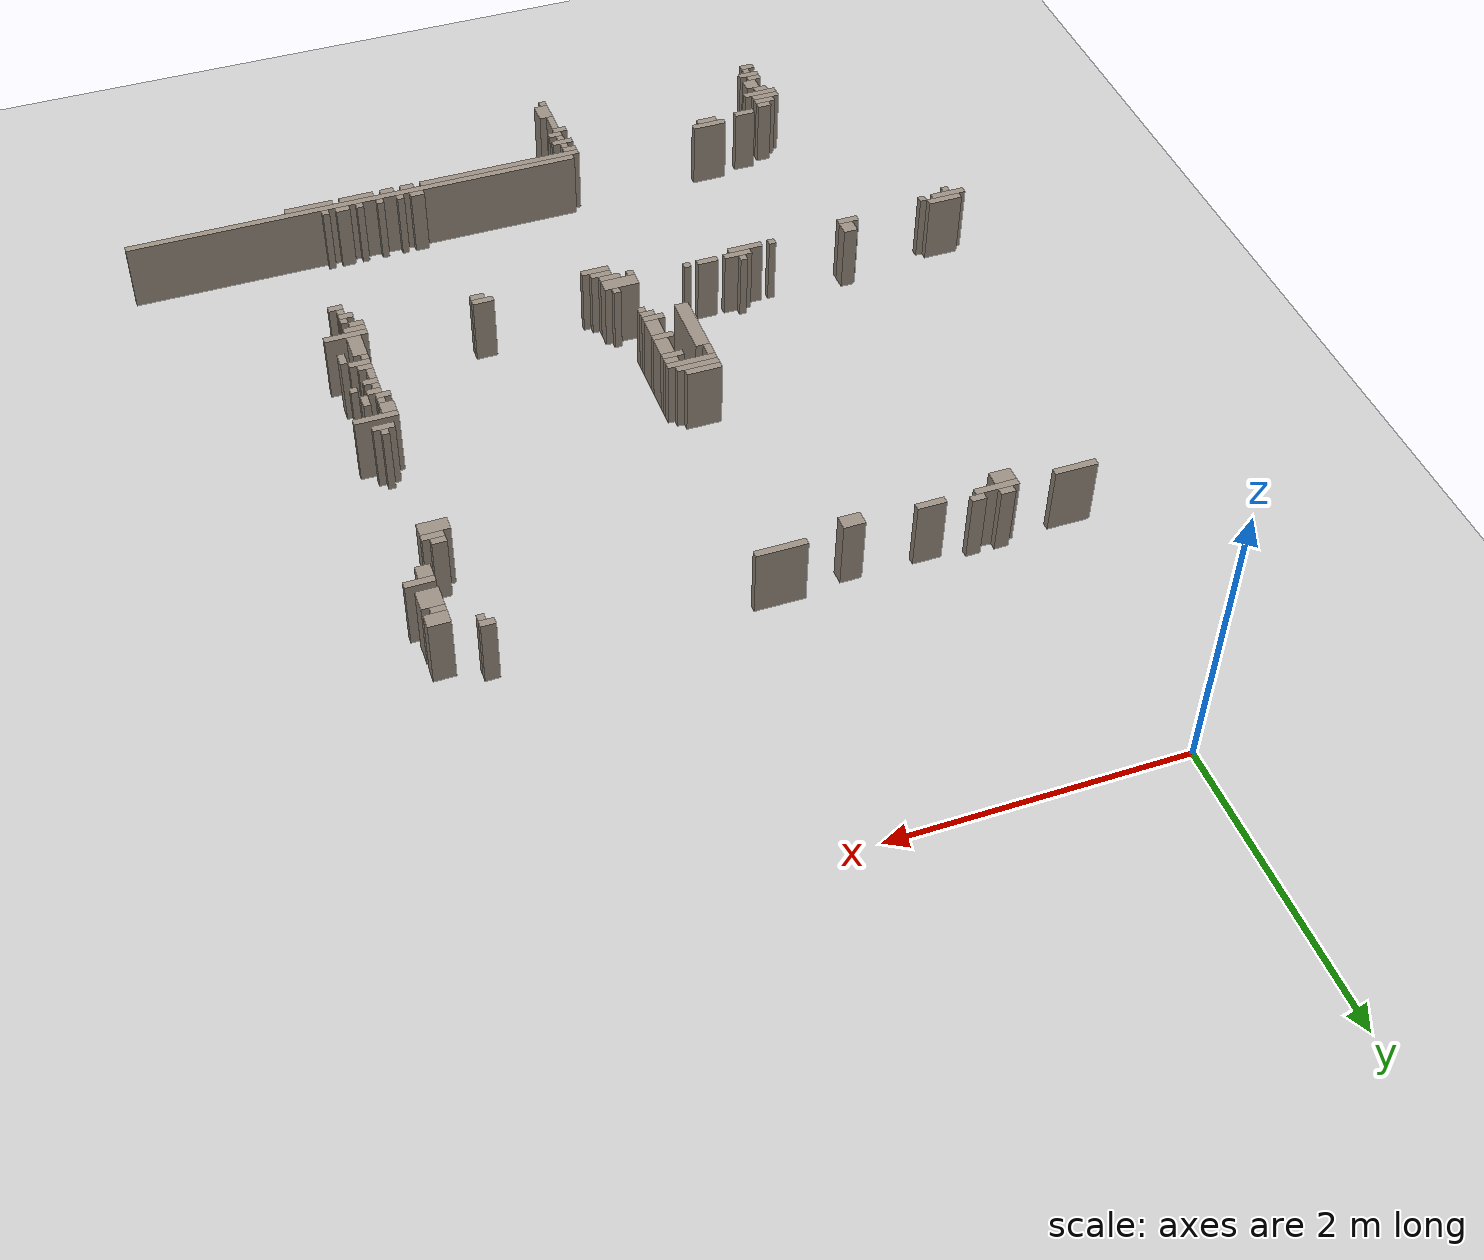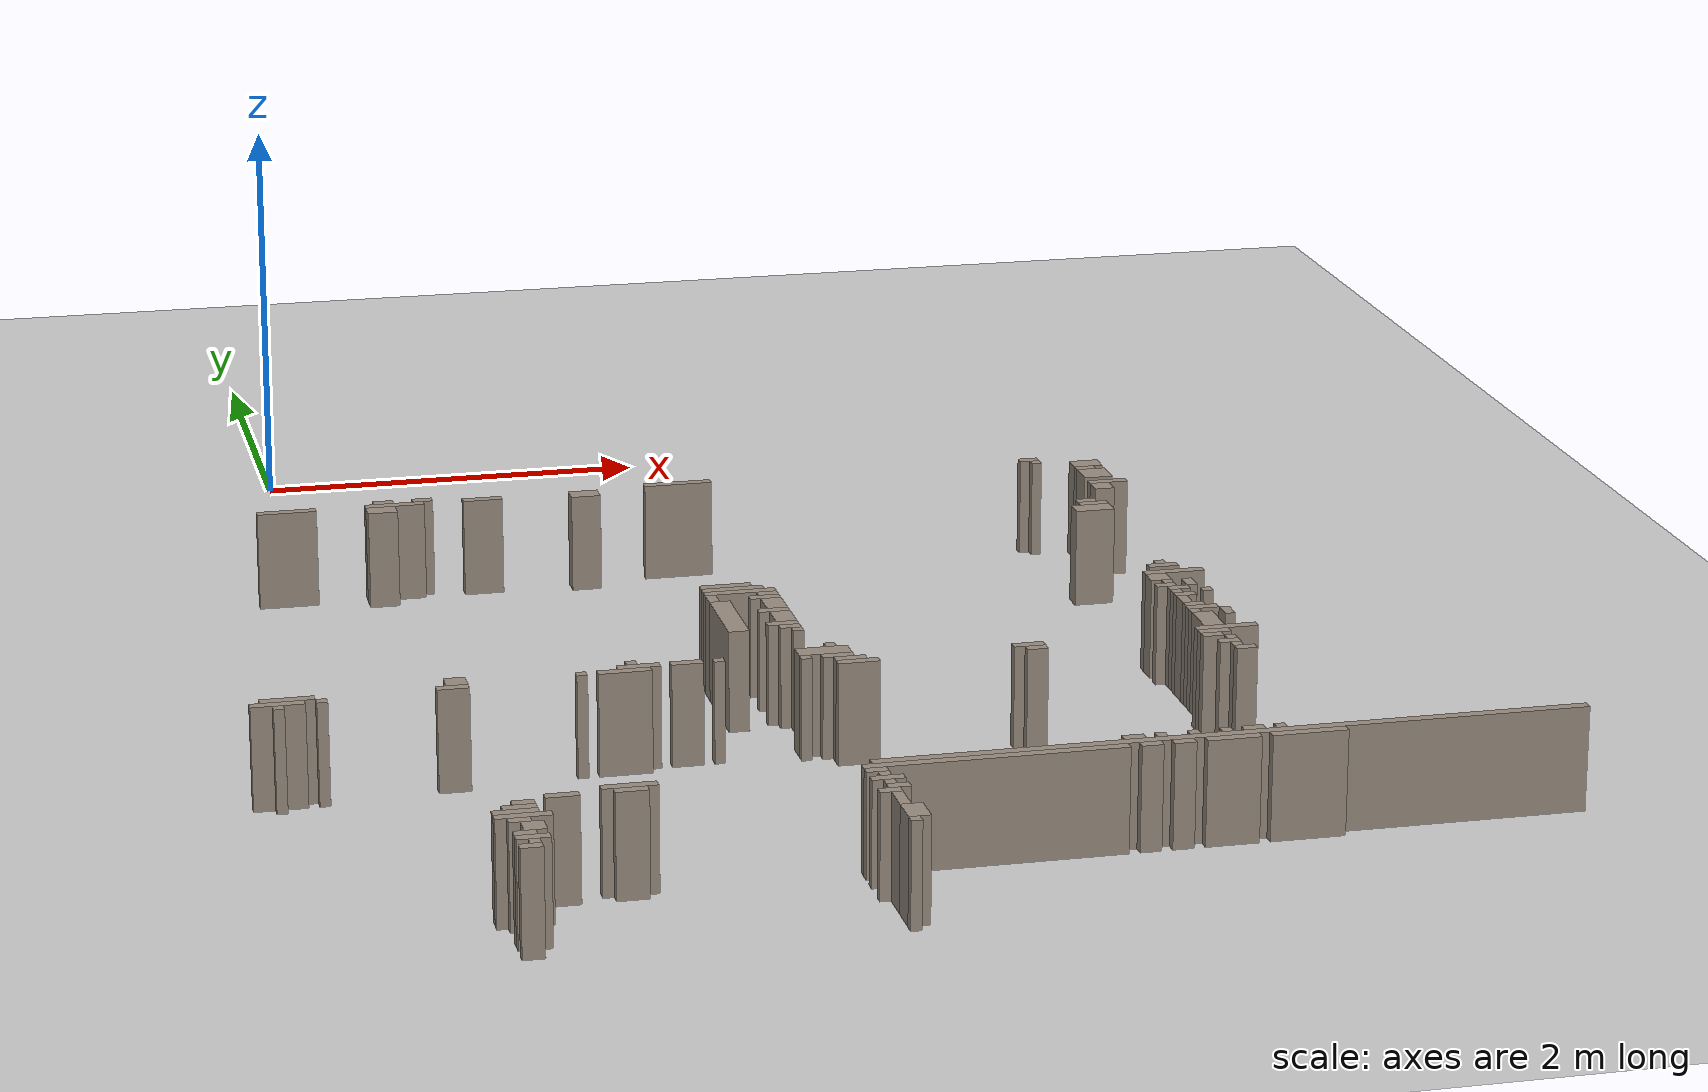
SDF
<sdf version="1.8">
 <world name="sala_real">
  <model name="ground_plane">
   <static>true</static>
   <link name="link">
    <collision name="col">
     <geometry><plane><normal>0 0 1</normal><size>100 100</size></plane></geometry>
    </collision>
    <visual name="vis">
     <geometry><plane><normal>0 0 1</normal><size>100 100</size></plane></geometry>
     <material><ambient>0.8 0.8 0.8 1</ambient><diffuse>0.8 0.8 0.8 1</diffuse></material>
    </visual>
   </link>
  </model>
  <model name="wall_292">
   <static>true</static>
   <pose>4.040 -2.063 0.250 0 0 0</pose>
   <link name="link">
    <collision name="col"><geometry><box><size>0.150 0.100 0.500</size></box></geometry></collision>
    <visual name="vis">
     <geometry><box><size>0.150 0.100 0.500</size></box></geometry>
     <material><ambient>0.6 0.55 0.5 1</ambient><diffuse>0.6 0.55 0.5 1</diffuse></material>
    </visual>
   </link>
  </model>
  <model name="wall_297">
   <static>true</static>
   <pose>4.015 -2.138 0.250 0 0 0</pose>
   <link name="link">
    <collision name="col"><geometry><box><size>0.100 0.050 0.500</size></box></geometry></collision>
    <visual name="vis">
     <geometry><box><size>0.100 0.050 0.500</size></box></geometry>
     <material><ambient>0.6 0.55 0.5 1</ambient><diffuse>0.6 0.55 0.5 1</diffuse></material>
    </visual>
   </link>
  </model>
  <model name="wall_324">
   <static>true</static>
   <pose>1.965 -3.788 0.250 0 0 0</pose>
   <link name="link">
    <collision name="col"><geometry><box><size>0.100 0.050 0.500</size></box></geometry></collision>
    <visual name="vis">
     <geometry><box><size>0.100 0.050 0.500</size></box></geometry>
     <material><ambient>0.6 0.55 0.5 1</ambient><diffuse>0.6 0.55 0.5 1</diffuse></material>
    </visual>
   </link>
  </model>
  <model name="wall_326">
   <static>true</static>
   <pose>3.865 -2.688 0.250 0 0 0</pose>
   <link name="link">
    <collision name="col"><geometry><box><size>0.100 0.050 0.500</size></box></geometry></collision>
    <visual name="vis">
     <geometry><box><size>0.100 0.050 0.500</size></box></geometry>
     <material><ambient>0.6 0.55 0.5 1</ambient><diffuse>0.6 0.55 0.5 1</diffuse></material>
    </visual>
   </link>
  </model>
  <model name="wall_331">
   <static>true</static>
   <pose>1.940 -3.838 0.250 0 0 0</pose>
   <link name="link">
    <collision name="col"><geometry><box><size>0.150 0.050 0.500</size></box></geometry></collision>
    <visual name="vis">
     <geometry><box><size>0.150 0.050 0.500</size></box></geometry>
     <material><ambient>0.6 0.55 0.5 1</ambient><diffuse>0.6 0.55 0.5 1</diffuse></material>
    </visual>
   </link>
  </model>
  <model name="wall_336">
   <static>true</static>
   <pose>1.965 -3.938 0.250 0 0 0</pose>
   <link name="link">
    <collision name="col"><geometry><box><size>0.100 0.150 0.500</size></box></geometry></collision>
    <visual name="vis">
     <geometry><box><size>0.100 0.150 0.500</size></box></geometry>
     <material><ambient>0.6 0.55 0.5 1</ambient><diffuse>0.6 0.55 0.5 1</diffuse></material>
    </visual>
   </link>
  </model>
  <model name="wall_337">
   <static>true</static>
   <pose>3.865 -3.963 0.250 0 0 0</pose>
   <link name="link">
    <collision name="col"><geometry><box><size>0.100 0.100 0.500</size></box></geometry></collision>
    <visual name="vis">
     <geometry><box><size>0.100 0.100 0.500</size></box></geometry>
     <material><ambient>0.6 0.55 0.5 1</ambient><diffuse>0.6 0.55 0.5 1</diffuse></material>
    </visual>
   </link>
  </model>
  <model name="wall_344">
   <static>true</static>
   <pose>3.890 -4.038 0.250 0 0 0</pose>
   <link name="link">
    <collision name="col"><geometry><box><size>0.050 0.050 0.500</size></box></geometry></collision>
    <visual name="vis">
     <geometry><box><size>0.050 0.050 0.500</size></box></geometry>
     <material><ambient>0.6 0.55 0.5 1</ambient><diffuse>0.6 0.55 0.5 1</diffuse></material>
    </visual>
   </link>
  </model>
  <model name="wall_346">
   <static>true</static>
   <pose>1.940 -4.038 0.250 0 0 0</pose>
   <link name="link">
    <collision name="col"><geometry><box><size>0.150 0.050 0.500</size></box></geometry></collision>
    <visual name="vis">
     <geometry><box><size>0.150 0.050 0.500</size></box></geometry>
     <material><ambient>0.6 0.55 0.5 1</ambient><diffuse>0.6 0.55 0.5 1</diffuse></material>
    </visual>
   </link>
  </model>
  <model name="wall_347">
   <static>true</static>
   <pose>3.915 -4.138 0.250 0 0 0</pose>
   <link name="link">
    <collision name="col"><geometry><box><size>0.100 0.050 0.500</size></box></geometry></collision>
    <visual name="vis">
     <geometry><box><size>0.100 0.050 0.500</size></box></geometry>
     <material><ambient>0.6 0.55 0.5 1</ambient><diffuse>0.6 0.55 0.5 1</diffuse></material>
    </visual>
   </link>
  </model>
  <model name="wall_350">
   <static>true</static>
   <pose>1.965 -4.138 0.250 0 0 0</pose>
   <link name="link">
    <collision name="col"><geometry><box><size>0.100 0.150 0.500</size></box></geometry></collision>
    <visual name="vis">
     <geometry><box><size>0.100 0.150 0.500</size></box></geometry>
     <material><ambient>0.6 0.55 0.5 1</ambient><diffuse>0.6 0.55 0.5 1</diffuse></material>
    </visual>
   </link>
  </model>
  <model name="wall_351">
   <static>true</static>
   <pose>3.890 -4.188 0.250 0 0 0</pose>
   <link name="link">
    <collision name="col"><geometry><box><size>0.050 0.050 0.500</size></box></geometry></collision>
    <visual name="vis">
     <geometry><box><size>0.050 0.050 0.500</size></box></geometry>
     <material><ambient>0.6 0.55 0.5 1</ambient><diffuse>0.6 0.55 0.5 1</diffuse></material>
    </visual>
   </link>
  </model>
  <model name="wall_356">
   <static>true</static>
   <pose>3.915 -4.238 0.250 0 0 0</pose>
   <link name="link">
    <collision name="col"><geometry><box><size>0.100 0.050 0.500</size></box></geometry></collision>
    <visual name="vis">
     <geometry><box><size>0.100 0.050 0.500</size></box></geometry>
     <material><ambient>0.6 0.55 0.5 1</ambient><diffuse>0.6 0.55 0.5 1</diffuse></material>
    </visual>
   </link>
  </model>
  <model name="wall_359">
   <static>true</static>
   <pose>3.940 -3.788 0.250 0 0 0</pose>
   <link name="link">
    <collision name="col"><geometry><box><size>0.150 0.050 0.500</size></box></geometry></collision>
    <visual name="vis">
     <geometry><box><size>0.150 0.050 0.500</size></box></geometry>
     <material><ambient>0.6 0.55 0.5 1</ambient><diffuse>0.6 0.55 0.5 1</diffuse></material>
    </visual>
   </link>
  </model>
  <model name="wall_362">
   <static>true</static>
   <pose>3.890 -4.313 0.250 0 0 0</pose>
   <link name="link">
    <collision name="col"><geometry><box><size>0.050 0.100 0.500</size></box></geometry></collision>
    <visual name="vis">
     <geometry><box><size>0.050 0.100 0.500</size></box></geometry>
     <material><ambient>0.6 0.55 0.5 1</ambient><diffuse>0.6 0.55 0.5 1</diffuse></material>
    </visual>
   </link>
  </model>
  <model name="wall_363">
   <static>true</static>
   <pose>4.040 -4.188 0.250 0 0 0</pose>
   <link name="link">
    <collision name="col"><geometry><box><size>0.050 0.050 0.500</size></box></geometry></collision>
    <visual name="vis">
     <geometry><box><size>0.050 0.050 0.500</size></box></geometry>
     <material><ambient>0.6 0.55 0.5 1</ambient><diffuse>0.6 0.55 0.5 1</diffuse></material>
    </visual>
   </link>
  </model>
  <model name="wall_367">
   <static>true</static>
   <pose>3.915 -4.388 0.250 0 0 0</pose>
   <link name="link">
    <collision name="col"><geometry><box><size>0.100 0.050 0.500</size></box></geometry></collision>
    <visual name="vis">
     <geometry><box><size>0.100 0.050 0.500</size></box></geometry>
     <material><ambient>0.6 0.55 0.5 1</ambient><diffuse>0.6 0.55 0.5 1</diffuse></material>
    </visual>
   </link>
  </model>
  <model name="wall_374">
   <static>true</static>
   <pose>1.390 -2.013 0.250 0 0 0</pose>
   <link name="link">
    <collision name="col"><geometry><box><size>0.150 0.100 0.500</size></box></geometry></collision>
    <visual name="vis">
     <geometry><box><size>0.150 0.100 0.500</size></box></geometry>
     <material><ambient>0.6 0.55 0.5 1</ambient><diffuse>0.6 0.55 0.5 1</diffuse></material>
    </visual>
   </link>
  </model>
  <model name="wall_379">
   <static>true</static>
   <pose>3.965 -3.888 0.250 0 0 0</pose>
   <link name="link">
    <collision name="col"><geometry><box><size>0.300 0.050 0.500</size></box></geometry></collision>
    <visual name="vis">
     <geometry><box><size>0.300 0.050 0.500</size></box></geometry>
     <material><ambient>0.6 0.55 0.5 1</ambient><diffuse>0.6 0.55 0.5 1</diffuse></material>
    </visual>
   </link>
  </model>
  <model name="wall_385">
   <static>true</static>
   <pose>3.890 -2.738 0.250 0 0 0</pose>
   <link name="link">
    <collision name="col"><geometry><box><size>0.150 0.050 0.500</size></box></geometry></collision>
    <visual name="vis">
     <geometry><box><size>0.150 0.050 0.500</size></box></geometry>
     <material><ambient>0.6 0.55 0.5 1</ambient><diffuse>0.6 0.55 0.5 1</diffuse></material>
    </visual>
   </link>
  </model>
  <model name="wall_387">
   <static>true</static>
   <pose>3.865 -4.088 0.250 0 0 0</pose>
   <link name="link">
    <collision name="col"><geometry><box><size>0.100 0.050 0.500</size></box></geometry></collision>
    <visual name="vis">
     <geometry><box><size>0.100 0.050 0.500</size></box></geometry>
     <material><ambient>0.6 0.55 0.5 1</ambient><diffuse>0.6 0.55 0.5 1</diffuse></material>
    </visual>
   </link>
  </model>
  <model name="wall_389">
   <static>true</static>
   <pose>3.940 -3.738 0.250 0 0 0</pose>
   <link name="link">
    <collision name="col"><geometry><box><size>0.050 0.050 0.500</size></box></geometry></collision>
    <visual name="vis">
     <geometry><box><size>0.050 0.050 0.500</size></box></geometry>
     <material><ambient>0.6 0.55 0.5 1</ambient><diffuse>0.6 0.55 0.5 1</diffuse></material>
    </visual>
   </link>
  </model>
  <model name="wall_390">
   <static>true</static>
   <pose>3.915 -4.613 0.250 0 0 0</pose>
   <link name="link">
    <collision name="col"><geometry><box><size>0.100 0.200 0.500</size></box></geometry></collision>
    <visual name="vis">
     <geometry><box><size>0.100 0.200 0.500</size></box></geometry>
     <material><ambient>0.6 0.55 0.5 1</ambient><diffuse>0.6 0.55 0.5 1</diffuse></material>
    </visual>
   </link>
  </model>
  <model name="wall_391">
   <static>true</static>
   <pose>3.940 -4.888 0.250 0 0 0</pose>
   <link name="link">
    <collision name="col"><geometry><box><size>0.050 0.050 0.500</size></box></geometry></collision>
    <visual name="vis">
     <geometry><box><size>0.050 0.050 0.500</size></box></geometry>
     <material><ambient>0.6 0.55 0.5 1</ambient><diffuse>0.6 0.55 0.5 1</diffuse></material>
    </visual>
   </link>
  </model>
  <model name="wall_402">
   <static>true</static>
   <pose>3.790 -1.988 0.250 0 0 0</pose>
   <link name="link">
    <collision name="col"><geometry><box><size>0.050 0.050 0.500</size></box></geometry></collision>
    <visual name="vis">
     <geometry><box><size>0.050 0.050 0.500</size></box></geometry>
     <material><ambient>0.6 0.55 0.5 1</ambient><diffuse>0.6 0.55 0.5 1</diffuse></material>
    </visual>
   </link>
  </model>
  <model name="wall_414">
   <static>true</static>
   <pose>0.365 -1.938 0.250 0 0 0</pose>
   <link name="link">
    <collision name="col"><geometry><box><size>0.100 0.050 0.500</size></box></geometry></collision>
    <visual name="vis">
     <geometry><box><size>0.100 0.050 0.500</size></box></geometry>
     <material><ambient>0.6 0.55 0.5 1</ambient><diffuse>0.6 0.55 0.5 1</diffuse></material>
    </visual>
   </link>
  </model>
  <model name="wall_415">
   <static>true</static>
   <pose>1.940 -4.738 0.250 0 0 0</pose>
   <link name="link">
    <collision name="col"><geometry><box><size>0.050 0.050 0.500</size></box></geometry></collision>
    <visual name="vis">
     <geometry><box><size>0.050 0.050 0.500</size></box></geometry>
     <material><ambient>0.6 0.55 0.5 1</ambient><diffuse>0.6 0.55 0.5 1</diffuse></material>
    </visual>
   </link>
  </model>
  <model name="wall_416">
   <static>true</static>
   <pose>0.340 -2.063 0.250 0 0 0</pose>
   <link name="link">
    <collision name="col"><geometry><box><size>0.150 0.100 0.500</size></box></geometry></collision>
    <visual name="vis">
     <geometry><box><size>0.150 0.100 0.500</size></box></geometry>
     <material><ambient>0.6 0.55 0.5 1</ambient><diffuse>0.6 0.55 0.5 1</diffuse></material>
    </visual>
   </link>
  </model>
  <model name="wall_417">
   <static>true</static>
   <pose>1.940 -4.238 0.250 0 0 0</pose>
   <link name="link">
    <collision name="col"><geometry><box><size>0.150 0.050 0.500</size></box></geometry></collision>
    <visual name="vis">
     <geometry><box><size>0.150 0.050 0.500</size></box></geometry>
     <material><ambient>0.6 0.55 0.5 1</ambient><diffuse>0.6 0.55 0.5 1</diffuse></material>
    </visual>
   </link>
  </model>
  <model name="wall_419">
   <static>true</static>
   <pose>1.940 -6.288 0.250 0 0 0</pose>
   <link name="link">
    <collision name="col"><geometry><box><size>0.050 0.050 0.500</size></box></geometry></collision>
    <visual name="vis">
     <geometry><box><size>0.050 0.050 0.500</size></box></geometry>
     <material><ambient>0.6 0.55 0.5 1</ambient><diffuse>0.6 0.55 0.5 1</diffuse></material>
    </visual>
   </link>
  </model>
  <model name="wall_421">
   <static>true</static>
   <pose>1.965 -4.288 0.250 0 0 0</pose>
   <link name="link">
    <collision name="col"><geometry><box><size>0.100 0.050 0.500</size></box></geometry></collision>
    <visual name="vis">
     <geometry><box><size>0.100 0.050 0.500</size></box></geometry>
     <material><ambient>0.6 0.55 0.5 1</ambient><diffuse>0.6 0.55 0.5 1</diffuse></material>
    </visual>
   </link>
  </model>
  <model name="wall_423">
   <static>true</static>
   <pose>0.315 -4.713 0.250 0 0 0</pose>
   <link name="link">
    <collision name="col"><geometry><box><size>0.100 0.100 0.500</size></box></geometry></collision>
    <visual name="vis">
     <geometry><box><size>0.100 0.100 0.500</size></box></geometry>
     <material><ambient>0.6 0.55 0.5 1</ambient><diffuse>0.6 0.55 0.5 1</diffuse></material>
    </visual>
   </link>
  </model>
  <model name="wall_424">
   <static>true</static>
   <pose>1.915 -6.238 0.250 0 0 0</pose>
   <link name="link">
    <collision name="col"><geometry><box><size>0.100 0.050 0.500</size></box></geometry></collision>
    <visual name="vis">
     <geometry><box><size>0.100 0.050 0.500</size></box></geometry>
     <material><ambient>0.6 0.55 0.5 1</ambient><diffuse>0.6 0.55 0.5 1</diffuse></material>
    </visual>
   </link>
  </model>
  <model name="wall_426">
   <static>true</static>
   <pose>0.365 -6.288 0.250 0 0 0</pose>
   <link name="link">
    <collision name="col"><geometry><box><size>0.100 0.050 0.500</size></box></geometry></collision>
    <visual name="vis">
     <geometry><box><size>0.100 0.050 0.500</size></box></geometry>
     <material><ambient>0.6 0.55 0.5 1</ambient><diffuse>0.6 0.55 0.5 1</diffuse></material>
    </visual>
   </link>
  </model>
  <model name="wall_427">
   <static>true</static>
   <pose>1.940 -6.388 0.250 0 0 0</pose>
   <link name="link">
    <collision name="col"><geometry><box><size>0.050 0.050 0.500</size></box></geometry></collision>
    <visual name="vis">
     <geometry><box><size>0.050 0.050 0.500</size></box></geometry>
     <material><ambient>0.6 0.55 0.5 1</ambient><diffuse>0.6 0.55 0.5 1</diffuse></material>
    </visual>
   </link>
  </model>
  <model name="wall_429">
   <static>true</static>
   <pose>0.315 -6.488 0.250 0 0 0</pose>
   <link name="link">
    <collision name="col"><geometry><box><size>0.100 0.050 0.500</size></box></geometry></collision>
    <visual name="vis">
     <geometry><box><size>0.100 0.050 0.500</size></box></geometry>
     <material><ambient>0.6 0.55 0.5 1</ambient><diffuse>0.6 0.55 0.5 1</diffuse></material>
    </visual>
   </link>
  </model>
  <model name="wall_430">
   <static>true</static>
   <pose>0.340 -6.338 0.250 0 0 0</pose>
   <link name="link">
    <collision name="col"><geometry><box><size>0.150 0.050 0.500</size></box></geometry></collision>
    <visual name="vis">
     <geometry><box><size>0.150 0.050 0.500</size></box></geometry>
     <material><ambient>0.6 0.55 0.5 1</ambient><diffuse>0.6 0.55 0.5 1</diffuse></material>
    </visual>
   </link>
  </model>
  <model name="wall_431">
   <static>true</static>
   <pose>1.965 -6.438 0.250 0 0 0</pose>
   <link name="link">
    <collision name="col"><geometry><box><size>0.100 0.050 0.500</size></box></geometry></collision>
    <visual name="vis">
     <geometry><box><size>0.100 0.050 0.500</size></box></geometry>
     <material><ambient>0.6 0.55 0.5 1</ambient><diffuse>0.6 0.55 0.5 1</diffuse></material>
    </visual>
   </link>
  </model>
  <model name="wall_434">
   <static>true</static>
   <pose>0.315 -6.638 0.250 0 0 0</pose>
   <link name="link">
    <collision name="col"><geometry><box><size>0.100 0.050 0.500</size></box></geometry></collision>
    <visual name="vis">
     <geometry><box><size>0.100 0.050 0.500</size></box></geometry>
     <material><ambient>0.6 0.55 0.5 1</ambient><diffuse>0.6 0.55 0.5 1</diffuse></material>
    </visual>
   </link>
  </model>
  <model name="wall_436">
   <static>true</static>
   <pose>0.365 -6.563 0.250 0 0 0</pose>
   <link name="link">
    <collision name="col"><geometry><box><size>0.100 0.100 0.500</size></box></geometry></collision>
    <visual name="vis">
     <geometry><box><size>0.100 0.100 0.500</size></box></geometry>
     <material><ambient>0.6 0.55 0.5 1</ambient><diffuse>0.6 0.55 0.5 1</diffuse></material>
    </visual>
   </link>
  </model>
  <model name="wall_437">
   <static>true</static>
   <pose>1.940 -6.588 0.250 0 0 0</pose>
   <link name="link">
    <collision name="col"><geometry><box><size>0.050 0.150 0.500</size></box></geometry></collision>
    <visual name="vis">
     <geometry><box><size>0.050 0.150 0.500</size></box></geometry>
     <material><ambient>0.6 0.55 0.5 1</ambient><diffuse>0.6 0.55 0.5 1</diffuse></material>
    </visual>
   </link>
  </model>
  <model name="wall_438">
   <static>true</static>
   <pose>0.315 -6.788 0.250 0 0 0</pose>
   <link name="link">
    <collision name="col"><geometry><box><size>0.100 0.050 0.500</size></box></geometry></collision>
    <visual name="vis">
     <geometry><box><size>0.100 0.050 0.500</size></box></geometry>
     <material><ambient>0.6 0.55 0.5 1</ambient><diffuse>0.6 0.55 0.5 1</diffuse></material>
    </visual>
   </link>
  </model>
  <model name="wall_439">
   <static>true</static>
   <pose>1.965 -6.738 0.250 0 0 0</pose>
   <link name="link">
    <collision name="col"><geometry><box><size>0.100 0.150 0.500</size></box></geometry></collision>
    <visual name="vis">
     <geometry><box><size>0.100 0.150 0.500</size></box></geometry>
     <material><ambient>0.6 0.55 0.5 1</ambient><diffuse>0.6 0.55 0.5 1</diffuse></material>
    </visual>
   </link>
  </model>
  <model name="wall_443">
   <static>true</static>
   <pose>1.940 -6.838 0.250 0 0 0</pose>
   <link name="link">
    <collision name="col"><geometry><box><size>0.050 0.050 0.500</size></box></geometry></collision>
    <visual name="vis">
     <geometry><box><size>0.050 0.050 0.500</size></box></geometry>
     <material><ambient>0.6 0.55 0.5 1</ambient><diffuse>0.6 0.55 0.5 1</diffuse></material>
    </visual>
   </link>
  </model>
  <model name="wall_445">
   <static>true</static>
   <pose>-0.510 -4.888 0.250 0 0 0</pose>
   <link name="link">
    <collision name="col"><geometry><box><size>0.050 0.050 0.500</size></box></geometry></collision>
    <visual name="vis">
     <geometry><box><size>0.050 0.050 0.500</size></box></geometry>
     <material><ambient>0.6 0.55 0.5 1</ambient><diffuse>0.6 0.55 0.5 1</diffuse></material>
    </visual>
   </link>
  </model>
  <model name="wall_446">
   <static>true</static>
   <pose>0.340 -6.688 0.250 0 0 0</pose>
   <link name="link">
    <collision name="col"><geometry><box><size>0.150 0.050 0.500</size></box></geometry></collision>
    <visual name="vis">
     <geometry><box><size>0.150 0.050 0.500</size></box></geometry>
     <material><ambient>0.6 0.55 0.5 1</ambient><diffuse>0.6 0.55 0.5 1</diffuse></material>
    </visual>
   </link>
  </model>
  <model name="wall_447">
   <static>true</static>
   <pose>0.340 -6.738 0.250 0 0 0</pose>
   <link name="link">
    <collision name="col"><geometry><box><size>0.050 0.050 0.500</size></box></geometry></collision>
    <visual name="vis">
     <geometry><box><size>0.050 0.050 0.500</size></box></geometry>
     <material><ambient>0.6 0.55 0.5 1</ambient><diffuse>0.6 0.55 0.5 1</diffuse></material>
    </visual>
   </link>
  </model>
  <model name="wall_467">
   <static>true</static>
   <pose>0.315 -6.388 0.250 0 0 0</pose>
   <link name="link">
    <collision name="col"><geometry><box><size>0.200 0.050 0.500</size></box></geometry></collision>
    <visual name="vis">
     <geometry><box><size>0.200 0.050 0.500</size></box></geometry>
     <material><ambient>0.6 0.55 0.5 1</ambient><diffuse>0.6 0.55 0.5 1</diffuse></material>
    </visual>
   </link>
  </model>
  <model name="wall_469">
   <static>true</static>
   <pose>1.990 -4.338 0.250 0 0 0</pose>
   <link name="link">
    <collision name="col"><geometry><box><size>0.050 0.050 0.500</size></box></geometry></collision>
    <visual name="vis">
     <geometry><box><size>0.050 0.050 0.500</size></box></geometry>
     <material><ambient>0.6 0.55 0.5 1</ambient><diffuse>0.6 0.55 0.5 1</diffuse></material>
    </visual>
   </link>
  </model>
  <model name="wall_554">
   <static>true</static>
   <pose>2.090 -4.588 0.250 0 0 0</pose>
   <link name="link">
    <collision name="col"><geometry><box><size>0.050 0.050 0.500</size></box></geometry></collision>
    <visual name="vis">
     <geometry><box><size>0.050 0.050 0.500</size></box></geometry>
     <material><ambient>0.6 0.55 0.5 1</ambient><diffuse>0.6 0.55 0.5 1</diffuse></material>
    </visual>
   </link>
  </model>
  <model name="wall_562">
   <static>true</static>
   <pose>-0.310 -4.838 0.250 0 0 0</pose>
   <link name="link">
    <collision name="col"><geometry><box><size>0.050 0.050 0.500</size></box></geometry></collision>
    <visual name="vis">
     <geometry><box><size>0.050 0.050 0.500</size></box></geometry>
     <material><ambient>0.6 0.55 0.5 1</ambient><diffuse>0.6 0.55 0.5 1</diffuse></material>
    </visual>
   </link>
  </model>
  <model name="wall_584">
   <static>true</static>
   <pose>1.140 -4.638 0.250 0 0 0</pose>
   <link name="link">
    <collision name="col"><geometry><box><size>0.050 0.050 0.500</size></box></geometry></collision>
    <visual name="vis">
     <geometry><box><size>0.050 0.050 0.500</size></box></geometry>
     <material><ambient>0.6 0.55 0.5 1</ambient><diffuse>0.6 0.55 0.5 1</diffuse></material>
    </visual>
   </link>
  </model>
  <model name="wall_646">
   <static>true</static>
   <pose>3.390 -6.088 0.250 0 0 0</pose>
   <link name="link">
    <collision name="col"><geometry><box><size>0.050 0.050 0.500</size></box></geometry></collision>
    <visual name="vis">
     <geometry><box><size>0.050 0.050 0.500</size></box></geometry>
     <material><ambient>0.6 0.55 0.5 1</ambient><diffuse>0.6 0.55 0.5 1</diffuse></material>
    </visual>
   </link>
  </model>
  <model name="wall_657">
   <static>true</static>
   <pose>2.090 -4.738 0.250 0 0 0</pose>
   <link name="link">
    <collision name="col"><geometry><box><size>0.150 0.050 0.500</size></box></geometry></collision>
    <visual name="vis">
     <geometry><box><size>0.150 0.050 0.500</size></box></geometry>
     <material><ambient>0.6 0.55 0.5 1</ambient><diffuse>0.6 0.55 0.5 1</diffuse></material>
    </visual>
   </link>
  </model>
  <model name="wall_660">
   <static>true</static>
   <pose>3.165 -6.188 0.250 0 0 0</pose>
   <link name="link">
    <collision name="col"><geometry><box><size>0.100 0.050 0.500</size></box></geometry></collision>
    <visual name="vis">
     <geometry><box><size>0.100 0.050 0.500</size></box></geometry>
     <material><ambient>0.6 0.55 0.5 1</ambient><diffuse>0.6 0.55 0.5 1</diffuse></material>
    </visual>
   </link>
  </model>
  <model name="wall_679">
   <static>true</static>
   <pose>1.690 -3.813 0.250 0 0 0</pose>
   <link name="link">
    <collision name="col"><geometry><box><size>0.050 0.100 0.500</size></box></geometry></collision>
    <visual name="vis">
     <geometry><box><size>0.050 0.100 0.500</size></box></geometry>
     <material><ambient>0.6 0.55 0.5 1</ambient><diffuse>0.6 0.55 0.5 1</diffuse></material>
    </visual>
   </link>
  </model>
  <model name="wall_721">
   <static>true</static>
   <pose>3.890 -4.788 0.250 0 0 0</pose>
   <link name="link">
    <collision name="col"><geometry><box><size>0.150 0.050 0.500</size></box></geometry></collision>
    <visual name="vis">
     <geometry><box><size>0.150 0.050 0.500</size></box></geometry>
     <material><ambient>0.6 0.55 0.5 1</ambient><diffuse>0.6 0.55 0.5 1</diffuse></material>
    </visual>
   </link>
  </model>
  <model name="wall_723">
   <static>true</static>
   <pose>3.865 -2.813 0.250 0 0 0</pose>
   <link name="link">
    <collision name="col"><geometry><box><size>0.200 0.100 0.500</size></box></geometry></collision>
    <visual name="vis">
     <geometry><box><size>0.200 0.100 0.500</size></box></geometry>
     <material><ambient>0.6 0.55 0.5 1</ambient><diffuse>0.6 0.55 0.5 1</diffuse></material>
    </visual>
   </link>
  </model>
  <model name="wall_731">
   <static>true</static>
   <pose>3.765 -1.938 0.250 0 0 0</pose>
   <link name="link">
    <collision name="col"><geometry><box><size>0.100 0.050 0.500</size></box></geometry></collision>
    <visual name="vis">
     <geometry><box><size>0.100 0.050 0.500</size></box></geometry>
     <material><ambient>0.6 0.55 0.5 1</ambient><diffuse>0.6 0.55 0.5 1</diffuse></material>
    </visual>
   </link>
  </model>
  <model name="wall_738">
   <static>true</static>
   <pose>3.915 -4.938 0.250 0 0 0</pose>
   <link name="link">
    <collision name="col"><geometry><box><size>0.100 0.050 0.500</size></box></geometry></collision>
    <visual name="vis">
     <geometry><box><size>0.100 0.050 0.500</size></box></geometry>
     <material><ambient>0.6 0.55 0.5 1</ambient><diffuse>0.6 0.55 0.5 1</diffuse></material>
    </visual>
   </link>
  </model>
  <model name="wall_740">
   <static>true</static>
   <pose>3.790 -6.088 0.250 0 0 0</pose>
   <link name="link">
    <collision name="col"><geometry><box><size>0.050 0.050 0.500</size></box></geometry></collision>
    <visual name="vis">
     <geometry><box><size>0.050 0.050 0.500</size></box></geometry>
     <material><ambient>0.6 0.55 0.5 1</ambient><diffuse>0.6 0.55 0.5 1</diffuse></material>
    </visual>
   </link>
  </model>
  <model name="wall_758">
   <static>true</static>
   <pose>3.965 -5.038 0.250 0 0 0</pose>
   <link name="link">
    <collision name="col"><geometry><box><size>0.100 0.050 0.500</size></box></geometry></collision>
    <visual name="vis">
     <geometry><box><size>0.100 0.050 0.500</size></box></geometry>
     <material><ambient>0.6 0.55 0.5 1</ambient><diffuse>0.6 0.55 0.5 1</diffuse></material>
    </visual>
   </link>
  </model>
  <model name="wall_770">
   <static>true</static>
   <pose>3.890 -4.488 0.250 0 0 0</pose>
   <link name="link">
    <collision name="col"><geometry><box><size>0.050 0.050 0.500</size></box></geometry></collision>
    <visual name="vis">
     <geometry><box><size>0.050 0.050 0.500</size></box></geometry>
     <material><ambient>0.6 0.55 0.5 1</ambient><diffuse>0.6 0.55 0.5 1</diffuse></material>
    </visual>
   </link>
  </model>
  <model name="wall_771">
   <static>true</static>
   <pose>4.040 -4.513 0.250 0 0 0</pose>
   <link name="link">
    <collision name="col"><geometry><box><size>0.050 0.100 0.500</size></box></geometry></collision>
    <visual name="vis">
     <geometry><box><size>0.050 0.100 0.500</size></box></geometry>
     <material><ambient>0.6 0.55 0.5 1</ambient><diffuse>0.6 0.55 0.5 1</diffuse></material>
    </visual>
   </link>
  </model>
  <model name="wall_791">
   <static>true</static>
   <pose>3.665 -6.088 0.250 0 0 0</pose>
   <link name="link">
    <collision name="col"><geometry><box><size>0.100 0.050 0.500</size></box></geometry></collision>
    <visual name="vis">
     <geometry><box><size>0.100 0.050 0.500</size></box></geometry>
     <material><ambient>0.6 0.55 0.5 1</ambient><diffuse>0.6 0.55 0.5 1</diffuse></material>
    </visual>
   </link>
  </model>
  <model name="wall_798">
   <static>true</static>
   <pose>3.865 -4.838 0.250 0 0 0</pose>
   <link name="link">
    <collision name="col"><geometry><box><size>0.100 0.050 0.500</size></box></geometry></collision>
    <visual name="vis">
     <geometry><box><size>0.100 0.050 0.500</size></box></geometry>
     <material><ambient>0.6 0.55 0.5 1</ambient><diffuse>0.6 0.55 0.5 1</diffuse></material>
    </visual>
   </link>
  </model>
  <model name="wall_827">
   <static>true</static>
   <pose>0.565 -1.938 0.250 0 0 0</pose>
   <link name="link">
    <collision name="col"><geometry><box><size>0.100 0.050 0.500</size></box></geometry></collision>
    <visual name="vis">
     <geometry><box><size>0.100 0.050 0.500</size></box></geometry>
     <material><ambient>0.6 0.55 0.5 1</ambient><diffuse>0.6 0.55 0.5 1</diffuse></material>
    </visual>
   </link>
  </model>
  <model name="wall_831">
   <static>true</static>
   <pose>3.990 -4.063 0.250 0 0 0</pose>
   <link name="link">
    <collision name="col"><geometry><box><size>0.050 0.100 0.500</size></box></geometry></collision>
    <visual name="vis">
     <geometry><box><size>0.050 0.100 0.500</size></box></geometry>
     <material><ambient>0.6 0.55 0.5 1</ambient><diffuse>0.6 0.55 0.5 1</diffuse></material>
    </visual>
   </link>
  </model>
  <model name="wall_846">
   <static>true</static>
   <pose>0.840 -6.238 0.250 0 0 0</pose>
   <link name="link">
    <collision name="col"><geometry><box><size>0.150 0.050 0.500</size></box></geometry></collision>
    <visual name="vis">
     <geometry><box><size>0.150 0.050 0.500</size></box></geometry>
     <material><ambient>0.6 0.55 0.5 1</ambient><diffuse>0.6 0.55 0.5 1</diffuse></material>
    </visual>
   </link>
  </model>
  <model name="wall_896">
   <static>true</static>
   <pose>1.890 -1.938 0.250 0 0 0</pose>
   <link name="link">
    <collision name="col"><geometry><box><size>0.350 0.050 0.500</size></box></geometry></collision>
    <visual name="vis">
     <geometry><box><size>0.350 0.050 0.500</size></box></geometry>
     <material><ambient>0.6 0.55 0.5 1</ambient><diffuse>0.6 0.55 0.5 1</diffuse></material>
    </visual>
   </link>
  </model>
  <model name="wall_906">
   <static>true</static>
   <pose>1.390 -4.688 0.250 0 0 0</pose>
   <link name="link">
    <collision name="col"><geometry><box><size>0.150 0.050 0.500</size></box></geometry></collision>
    <visual name="vis">
     <geometry><box><size>0.150 0.050 0.500</size></box></geometry>
     <material><ambient>0.6 0.55 0.5 1</ambient><diffuse>0.6 0.55 0.5 1</diffuse></material>
    </visual>
   </link>
  </model>
  <model name="wall_909">
   <static>true</static>
   <pose>3.940 -4.438 0.250 0 0 0</pose>
   <link name="link">
    <collision name="col"><geometry><box><size>0.150 0.050 0.500</size></box></geometry></collision>
    <visual name="vis">
     <geometry><box><size>0.150 0.050 0.500</size></box></geometry>
     <material><ambient>0.6 0.55 0.5 1</ambient><diffuse>0.6 0.55 0.5 1</diffuse></material>
    </visual>
   </link>
  </model>
  <model name="wall_917">
   <static>true</static>
   <pose>1.715 -4.088 0.250 0 0 0</pose>
   <link name="link">
    <collision name="col"><geometry><box><size>0.100 0.450 0.500</size></box></geometry></collision>
    <visual name="vis">
     <geometry><box><size>0.100 0.450 0.500</size></box></geometry>
     <material><ambient>0.6 0.55 0.5 1</ambient><diffuse>0.6 0.55 0.5 1</diffuse></material>
    </visual>
   </link>
  </model>
  <model name="wall_980">
   <static>true</static>
   <pose>1.540 -4.688 0.250 0 0 0</pose>
   <link name="link">
    <collision name="col"><geometry><box><size>0.050 0.050 0.500</size></box></geometry></collision>
    <visual name="vis">
     <geometry><box><size>0.050 0.050 0.500</size></box></geometry>
     <material><ambient>0.6 0.55 0.5 1</ambient><diffuse>0.6 0.55 0.5 1</diffuse></material>
    </visual>
   </link>
  </model>
  <model name="wall_991">
   <static>true</static>
   <pose>-0.135 -1.988 0.250 0 0 0</pose>
   <link name="link">
    <collision name="col"><geometry><box><size>0.300 0.050 0.500</size></box></geometry></collision>
    <visual name="vis">
     <geometry><box><size>0.300 0.050 0.500</size></box></geometry>
     <material><ambient>0.6 0.55 0.5 1</ambient><diffuse>0.6 0.55 0.5 1</diffuse></material>
    </visual>
   </link>
  </model>
  <model name="wall_992">
   <static>true</static>
   <pose>0.415 -1.988 0.250 0 0 0</pose>
   <link name="link">
    <collision name="col"><geometry><box><size>0.300 0.050 0.500</size></box></geometry></collision>
    <visual name="vis">
     <geometry><box><size>0.300 0.050 0.500</size></box></geometry>
     <material><ambient>0.6 0.55 0.5 1</ambient><diffuse>0.6 0.55 0.5 1</diffuse></material>
    </visual>
   </link>
  </model>
  <model name="wall_993">
   <static>true</static>
   <pose>0.865 -1.988 0.250 0 0 0</pose>
   <link name="link">
    <collision name="col"><geometry><box><size>0.200 0.050 0.500</size></box></geometry></collision>
    <visual name="vis">
     <geometry><box><size>0.200 0.050 0.500</size></box></geometry>
     <material><ambient>0.6 0.55 0.5 1</ambient><diffuse>0.6 0.55 0.5 1</diffuse></material>
    </visual>
   </link>
  </model>
  <model name="wall_999">
   <static>true</static>
   <pose>4.040 -2.238 0.250 0 0 0</pose>
   <link name="link">
    <collision name="col"><geometry><box><size>0.150 0.150 0.500</size></box></geometry></collision>
    <visual name="vis">
     <geometry><box><size>0.150 0.150 0.500</size></box></geometry>
     <material><ambient>0.6 0.55 0.5 1</ambient><diffuse>0.6 0.55 0.5 1</diffuse></material>
    </visual>
   </link>
  </model>
  <model name="wall_1002">
   <static>true</static>
   <pose>4.015 -2.463 0.250 0 0 0</pose>
   <link name="link">
    <collision name="col"><geometry><box><size>0.100 0.100 0.500</size></box></geometry></collision>
    <visual name="vis">
     <geometry><box><size>0.100 0.100 0.500</size></box></geometry>
     <material><ambient>0.6 0.55 0.5 1</ambient><diffuse>0.6 0.55 0.5 1</diffuse></material>
    </visual>
   </link>
  </model>
  <model name="wall_1004">
   <static>true</static>
   <pose>4.065 -2.388 0.250 0 0 0</pose>
   <link name="link">
    <collision name="col"><geometry><box><size>0.200 0.050 0.500</size></box></geometry></collision>
    <visual name="vis">
     <geometry><box><size>0.200 0.050 0.500</size></box></geometry>
     <material><ambient>0.6 0.55 0.5 1</ambient><diffuse>0.6 0.55 0.5 1</diffuse></material>
    </visual>
   </link>
  </model>
  <model name="wall_1013">
   <static>true</static>
   <pose>1.790 -3.638 0.250 0 0 0</pose>
   <link name="link">
    <collision name="col"><geometry><box><size>0.250 0.050 0.500</size></box></geometry></collision>
    <visual name="vis">
     <geometry><box><size>0.250 0.050 0.500</size></box></geometry>
     <material><ambient>0.6 0.55 0.5 1</ambient><diffuse>0.6 0.55 0.5 1</diffuse></material>
    </visual>
   </link>
  </model>
  <model name="wall_1014">
   <static>true</static>
   <pose>1.815 -3.688 0.250 0 0 0</pose>
   <link name="link">
    <collision name="col"><geometry><box><size>0.300 0.050 0.500</size></box></geometry></collision>
    <visual name="vis">
     <geometry><box><size>0.300 0.050 0.500</size></box></geometry>
     <material><ambient>0.6 0.55 0.5 1</ambient><diffuse>0.6 0.55 0.5 1</diffuse></material>
    </visual>
   </link>
  </model>
  <model name="wall_1015">
   <static>true</static>
   <pose>1.840 -3.738 0.250 0 0 0</pose>
   <link name="link">
    <collision name="col"><geometry><box><size>0.350 0.050 0.500</size></box></geometry></collision>
    <visual name="vis">
     <geometry><box><size>0.350 0.050 0.500</size></box></geometry>
     <material><ambient>0.6 0.55 0.5 1</ambient><diffuse>0.6 0.55 0.5 1</diffuse></material>
    </visual>
   </link>
  </model>
  <model name="wall_1016">
   <static>true</static>
   <pose>3.940 -4.988 0.250 0 0 0</pose>
   <link name="link">
    <collision name="col"><geometry><box><size>0.050 0.050 0.500</size></box></geometry></collision>
    <visual name="vis">
     <geometry><box><size>0.050 0.050 0.500</size></box></geometry>
     <material><ambient>0.6 0.55 0.5 1</ambient><diffuse>0.6 0.55 0.5 1</diffuse></material>
    </visual>
   </link>
  </model>
  <model name="wall_1019">
   <static>true</static>
   <pose>1.940 -6.338 0.250 0 0 0</pose>
   <link name="link">
    <collision name="col"><geometry><box><size>0.150 0.050 0.500</size></box></geometry></collision>
    <visual name="vis">
     <geometry><box><size>0.150 0.050 0.500</size></box></geometry>
     <material><ambient>0.6 0.55 0.5 1</ambient><diffuse>0.6 0.55 0.5 1</diffuse></material>
    </visual>
   </link>
  </model>
  <model name="wall_1021">
   <static>true</static>
   <pose>3.965 -4.738 0.250 0 0 0</pose>
   <link name="link">
    <collision name="col"><geometry><box><size>0.300 0.050 0.500</size></box></geometry></collision>
    <visual name="vis">
     <geometry><box><size>0.300 0.050 0.500</size></box></geometry>
     <material><ambient>0.6 0.55 0.5 1</ambient><diffuse>0.6 0.55 0.5 1</diffuse></material>
    </visual>
   </link>
  </model>
  <model name="wall_1036">
   <static>true</static>
   <pose>2.040 -4.663 0.250 0 0 0</pose>
   <link name="link">
    <collision name="col"><geometry><box><size>0.250 0.100 0.500</size></box></geometry></collision>
    <visual name="vis">
     <geometry><box><size>0.250 0.100 0.500</size></box></geometry>
     <material><ambient>0.6 0.55 0.5 1</ambient><diffuse>0.6 0.55 0.5 1</diffuse></material>
    </visual>
   </link>
  </model>
  <model name="wall_1040">
   <static>true</static>
   <pose>1.165 -4.688 0.250 0 0 0</pose>
   <link name="link">
    <collision name="col"><geometry><box><size>0.200 0.050 0.500</size></box></geometry></collision>
    <visual name="vis">
     <geometry><box><size>0.200 0.050 0.500</size></box></geometry>
     <material><ambient>0.6 0.55 0.5 1</ambient><diffuse>0.6 0.55 0.5 1</diffuse></material>
    </visual>
   </link>
  </model>
  <model name="wall_1042">
   <static>true</static>
   <pose>0.890 -4.738 0.250 0 0 0</pose>
   <link name="link">
    <collision name="col"><geometry><box><size>0.050 0.050 0.500</size></box></geometry></collision>
    <visual name="vis">
     <geometry><box><size>0.050 0.050 0.500</size></box></geometry>
     <material><ambient>0.6 0.55 0.5 1</ambient><diffuse>0.6 0.55 0.5 1</diffuse></material>
    </visual>
   </link>
  </model>
  <model name="wall_1043">
   <static>true</static>
   <pose>1.090 -4.738 0.250 0 0 0</pose>
   <link name="link">
    <collision name="col"><geometry><box><size>0.250 0.050 0.500</size></box></geometry></collision>
    <visual name="vis">
     <geometry><box><size>0.250 0.050 0.500</size></box></geometry>
     <material><ambient>0.6 0.55 0.5 1</ambient><diffuse>0.6 0.55 0.5 1</diffuse></material>
    </visual>
   </link>
  </model>
  <model name="wall_1047">
   <static>true</static>
   <pose>-0.460 -4.788 0.250 0 0 0</pose>
   <link name="link">
    <collision name="col"><geometry><box><size>0.250 0.050 0.500</size></box></geometry></collision>
    <visual name="vis">
     <geometry><box><size>0.250 0.050 0.500</size></box></geometry>
     <material><ambient>0.6 0.55 0.5 1</ambient><diffuse>0.6 0.55 0.5 1</diffuse></material>
    </visual>
   </link>
  </model>
  <model name="wall_1048">
   <static>true</static>
   <pose>0.290 -4.788 0.250 0 0 0</pose>
   <link name="link">
    <collision name="col"><geometry><box><size>0.150 0.050 0.500</size></box></geometry></collision>
    <visual name="vis">
     <geometry><box><size>0.150 0.050 0.500</size></box></geometry>
     <material><ambient>0.6 0.55 0.5 1</ambient><diffuse>0.6 0.55 0.5 1</diffuse></material>
    </visual>
   </link>
  </model>
  <model name="wall_1049">
   <static>true</static>
   <pose>2.140 -4.788 0.250 0 0 0</pose>
   <link name="link">
    <collision name="col"><geometry><box><size>0.150 0.050 0.500</size></box></geometry></collision>
    <visual name="vis">
     <geometry><box><size>0.150 0.050 0.500</size></box></geometry>
     <material><ambient>0.6 0.55 0.5 1</ambient><diffuse>0.6 0.55 0.5 1</diffuse></material>
    </visual>
   </link>
  </model>
  <model name="wall_1050">
   <static>true</static>
   <pose>2.990 -4.788 0.250 0 0 0</pose>
   <link name="link">
    <collision name="col"><geometry><box><size>0.150 0.050 0.500</size></box></geometry></collision>
    <visual name="vis">
     <geometry><box><size>0.150 0.050 0.500</size></box></geometry>
     <material><ambient>0.6 0.55 0.5 1</ambient><diffuse>0.6 0.55 0.5 1</diffuse></material>
    </visual>
   </link>
  </model>
  <model name="wall_1054">
   <static>true</static>
   <pose>-0.510 -4.838 0.250 0 0 0</pose>
   <link name="link">
    <collision name="col"><geometry><box><size>0.250 0.050 0.500</size></box></geometry></collision>
    <visual name="vis">
     <geometry><box><size>0.250 0.050 0.500</size></box></geometry>
     <material><ambient>0.6 0.55 0.5 1</ambient><diffuse>0.6 0.55 0.5 1</diffuse></material>
    </visual>
   </link>
  </model>
  <model name="wall_1055">
   <static>true</static>
   <pose>2.165 -4.838 0.250 0 0 0</pose>
   <link name="link">
    <collision name="col"><geometry><box><size>0.200 0.050 0.500</size></box></geometry></collision>
    <visual name="vis">
     <geometry><box><size>0.200 0.050 0.500</size></box></geometry>
     <material><ambient>0.6 0.55 0.5 1</ambient><diffuse>0.6 0.55 0.5 1</diffuse></material>
    </visual>
   </link>
  </model>
  <model name="wall_1056">
   <static>true</static>
   <pose>3.015 -4.838 0.250 0 0 0</pose>
   <link name="link">
    <collision name="col"><geometry><box><size>0.100 0.050 0.500</size></box></geometry></collision>
    <visual name="vis">
     <geometry><box><size>0.100 0.050 0.500</size></box></geometry>
     <material><ambient>0.6 0.55 0.5 1</ambient><diffuse>0.6 0.55 0.5 1</diffuse></material>
    </visual>
   </link>
  </model>
  <model name="wall_1070">
   <static>true</static>
   <pose>3.115 -6.088 0.250 0 0 0</pose>
   <link name="link">
    <collision name="col"><geometry><box><size>0.100 0.050 0.500</size></box></geometry></collision>
    <visual name="vis">
     <geometry><box><size>0.100 0.050 0.500</size></box></geometry>
     <material><ambient>0.6 0.55 0.5 1</ambient><diffuse>0.6 0.55 0.5 1</diffuse></material>
    </visual>
   </link>
  </model>
  <model name="wall_1071">
   <static>true</static>
   <pose>3.240 -6.088 0.250 0 0 0</pose>
   <link name="link">
    <collision name="col"><geometry><box><size>0.050 0.050 0.500</size></box></geometry></collision>
    <visual name="vis">
     <geometry><box><size>0.050 0.050 0.500</size></box></geometry>
     <material><ambient>0.6 0.55 0.5 1</ambient><diffuse>0.6 0.55 0.5 1</diffuse></material>
    </visual>
   </link>
  </model>
  <model name="wall_1072">
   <static>true</static>
   <pose>3.540 -6.088 0.250 0 0 0</pose>
   <link name="link">
    <collision name="col"><geometry><box><size>0.050 0.050 0.500</size></box></geometry></collision>
    <visual name="vis">
     <geometry><box><size>0.050 0.050 0.500</size></box></geometry>
     <material><ambient>0.6 0.55 0.5 1</ambient><diffuse>0.6 0.55 0.5 1</diffuse></material>
    </visual>
   </link>
  </model>
  <model name="wall_1074">
   <static>true</static>
   <pose>3.565 -6.138 0.250 0 0 0</pose>
   <link name="link">
    <collision name="col"><geometry><box><size>3.300 0.050 0.500</size></box></geometry></collision>
    <visual name="vis">
     <geometry><box><size>3.300 0.050 0.500</size></box></geometry>
     <material><ambient>0.6 0.55 0.5 1</ambient><diffuse>0.6 0.55 0.5 1</diffuse></material>
    </visual>
   </link>
  </model>
  <model name="wall_1075">
   <static>true</static>
   <pose>0.840 -6.188 0.250 0 0 0</pose>
   <link name="link">
    <collision name="col"><geometry><box><size>0.250 0.050 0.500</size></box></geometry></collision>
    <visual name="vis">
     <geometry><box><size>0.250 0.050 0.500</size></box></geometry>
     <material><ambient>0.6 0.55 0.5 1</ambient><diffuse>0.6 0.55 0.5 1</diffuse></material>
    </visual>
   </link>
  </model>
  <model name="wall_1076">
   <static>true</static>
   <pose>2.465 -6.188 0.250 0 0 0</pose>
   <link name="link">
    <collision name="col"><geometry><box><size>1.200 0.050 0.500</size></box></geometry></collision>
    <visual name="vis">
     <geometry><box><size>1.200 0.050 0.500</size></box></geometry>
     <material><ambient>0.6 0.55 0.5 1</ambient><diffuse>0.6 0.55 0.5 1</diffuse></material>
    </visual>
   </link>
  </model>
  <model name="wall_1077">
   <static>true</static>
   <pose>3.315 -6.188 0.250 0 0 0</pose>
   <link name="link">
    <collision name="col"><geometry><box><size>0.100 0.050 0.500</size></box></geometry></collision>
    <visual name="vis">
     <geometry><box><size>0.100 0.050 0.500</size></box></geometry>
     <material><ambient>0.6 0.55 0.5 1</ambient><diffuse>0.6 0.55 0.5 1</diffuse></material>
    </visual>
   </link>
  </model>
  <model name="wall_1078">
   <static>true</static>
   <pose>3.540 -6.188 0.250 0 0 0</pose>
   <link name="link">
    <collision name="col"><geometry><box><size>0.250 0.050 0.500</size></box></geometry></collision>
    <visual name="vis">
     <geometry><box><size>0.250 0.050 0.500</size></box></geometry>
     <material><ambient>0.6 0.55 0.5 1</ambient><diffuse>0.6 0.55 0.5 1</diffuse></material>
    </visual>
   </link>
  </model>
  <model name="wall_1079">
   <static>true</static>
   <pose>3.890 -6.188 0.250 0 0 0</pose>
   <link name="link">
    <collision name="col"><geometry><box><size>0.350 0.050 0.500</size></box></geometry></collision>
    <visual name="vis">
     <geometry><box><size>0.350 0.050 0.500</size></box></geometry>
     <material><ambient>0.6 0.55 0.5 1</ambient><diffuse>0.6 0.55 0.5 1</diffuse></material>
    </visual>
   </link>
  </model>
  <model name="wall_1082">
   <static>true</static>
   <pose>0.540 -6.238 0.250 0 0 0</pose>
   <link name="link">
    <collision name="col"><geometry><box><size>0.150 0.050 0.500</size></box></geometry></collision>
    <visual name="vis">
     <geometry><box><size>0.150 0.050 0.500</size></box></geometry>
     <material><ambient>0.6 0.55 0.5 1</ambient><diffuse>0.6 0.55 0.5 1</diffuse></material>
    </visual>
   </link>
  </model>
  <model name="wall_1083">
   <static>true</static>
   <pose>1.915 -6.488 0.250 0 0 0</pose>
   <link name="link">
    <collision name="col"><geometry><box><size>0.100 0.050 0.500</size></box></geometry></collision>
    <visual name="vis">
     <geometry><box><size>0.100 0.050 0.500</size></box></geometry>
     <material><ambient>0.6 0.55 0.5 1</ambient><diffuse>0.6 0.55 0.5 1</diffuse></material>
    </visual>
   </link>
  </model>
  <model name="wall_1088">
   <static>true</static>
   <pose>0.340 -6.438 0.250 0 0 0</pose>
   <link name="link">
    <collision name="col"><geometry><box><size>0.250 0.050 0.500</size></box></geometry></collision>
    <visual name="vis">
     <geometry><box><size>0.250 0.050 0.500</size></box></geometry>
     <material><ambient>0.6 0.55 0.5 1</ambient><diffuse>0.6 0.55 0.5 1</diffuse></material>
    </visual>
   </link>
  </model>
 </world>
</sdf>
